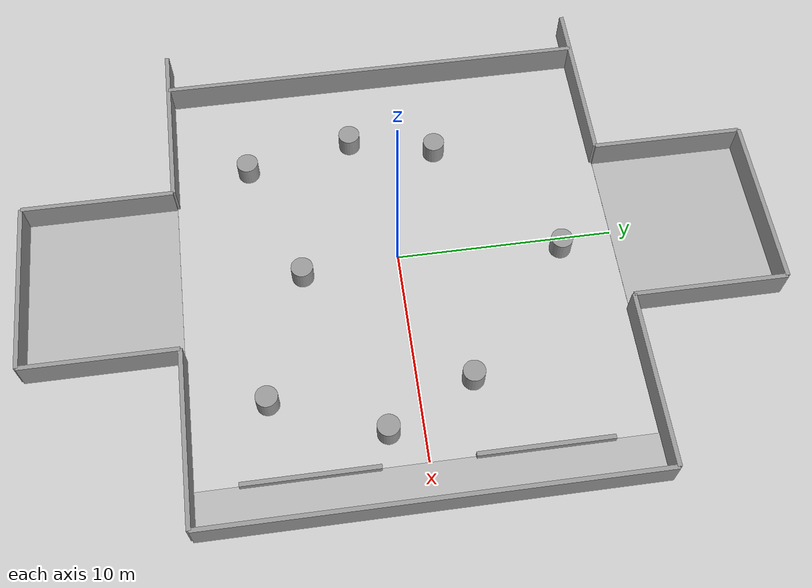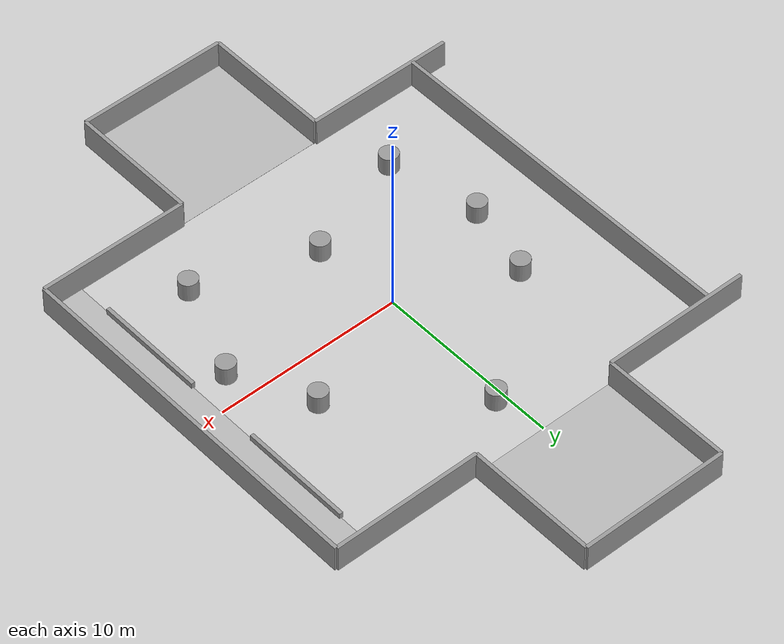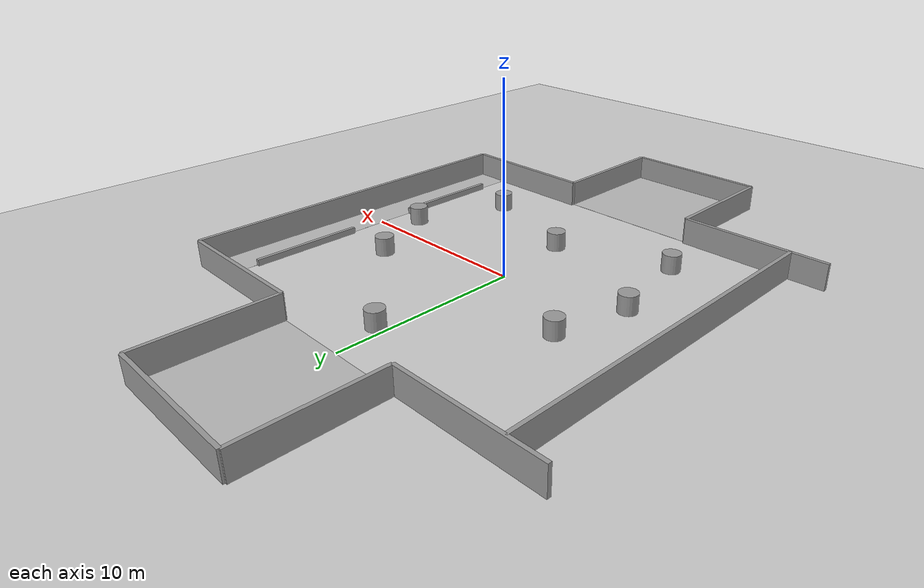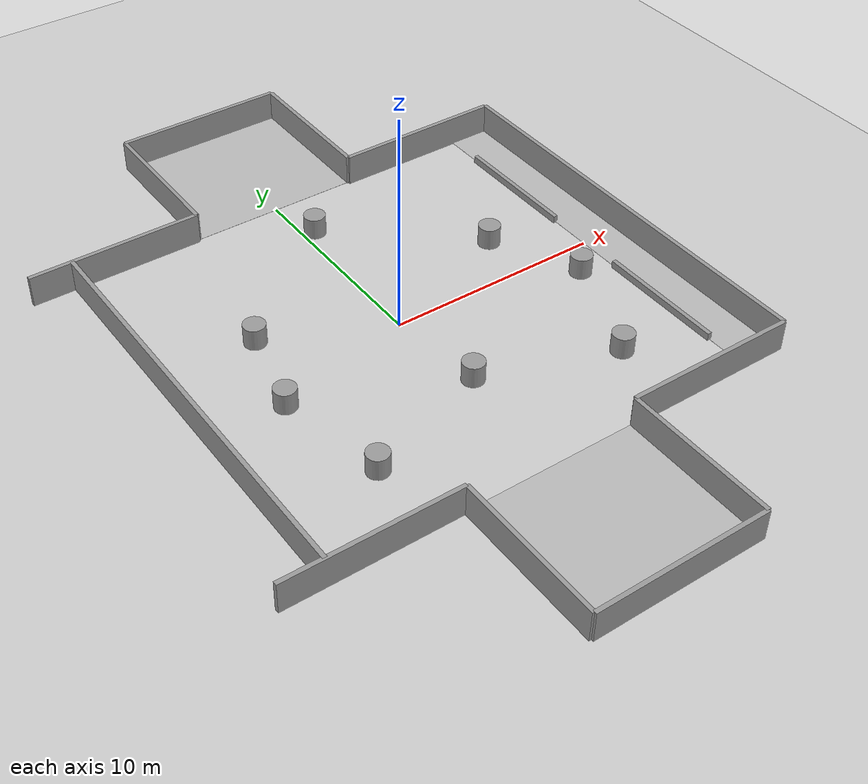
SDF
<sdf version="1.6">
 <world name="default">
  <model name="ground_plane">
   <static>1</static>
   <link name="link">
    <collision name="collision">
     <geometry><plane><normal>0 0 1</normal><size>100 100</size></plane></geometry>
     <surface><friction><ode><mu>100</mu><mu2>50</mu2></ode></friction></surface>
    </collision>
    <visual name="visual">
     <cast_shadows>0</cast_shadows>
     <geometry><plane><normal>0 0 1</normal><size>100 100</size></plane></geometry>
     <material>
      <script><uri>file://media/materials/scripts/gazebo.material</uri><name>Gazebo/Grey</name></script>
     </material>
    </visual>
   </link>
  </model>
  <light name="sun" type="directional">
   <pose>0 0 10 0 -0 0</pose>
   <diffuse>0.8 0.8 0.8 1</diffuse>
   <specular>0.2 0.2 0.2 1</specular>
   <attenuation>
    <range>1000</range>
    <constant>0.9</constant>
    <linear>0.01</linear>
    <quadratic>0.001</quadratic>
   </attenuation>
   <direction>-0.5 0.1 -0.9</direction>
  </light>
  <scene><shadows>0</shadows><ambient>0.4 0.4 0.4 1</ambient><background>0.7 0.7 0.7 1</background></scene>
  <model name="warehouse_walls">
   <static>1</static>
   <link name="wall1_link">
    <pose>-10 0 0 0 -0 1.57</pose>
    <collision name="collision"><geometry><box><size>20 0.2 2.8</size></box></geometry></collision>
    <visual name="wall1_visual">
     <cast_shadows>0</cast_shadows>
     <geometry><box><size>20 0.2 2.8</size></box></geometry>
     <material>
      <script>
       <uri>model://grey_wall/materials/scripts</uri>
       <uri>model://grey_wall/materials/textures</uri>
       <name>vrc/grey_wall</name>
      </script>
     </material>
    </visual>
   </link>
   <link name="wall2_link2">
    <pose>8 -10 0 0 -0 0</pose>
    <collision name="wall2_collision2"><geometry><box><size>8 0.2 2.8</size></box></geometry></collision>
    <visual name="wall2_visual2">
     <cast_shadows>0</cast_shadows>
     <geometry><box><size>8 0.2 2.8</size></box></geometry>
     <material>
      <script>
       <uri>model://grey_wall/materials/scripts</uri>
       <uri>model://grey_wall/materials/textures</uri>
       <name>vrc/grey_wall</name>
      </script>
     </material>
    </visual>
   </link>
   <link name="wall2_link3">
    <pose>4 -13.5 0 0 -0 1.57</pose>
    <collision name="wall2_collision3"><geometry><box><size>7 0.2 2.8</size></box></geometry></collision>
    <visual name="wall2_visual3">
     <cast_shadows>0</cast_shadows>
     <geometry><box><size>7 0.2 2.8</size></box></geometry>
     <material>
      <script>
       <uri>model://grey_wall/materials/scripts</uri>
       <uri>model://grey_wall/materials/textures</uri>
       <name>vrc/grey_wall</name>
      </script>
     </material>
    </visual>
   </link>
   <link name="wall2_link4">
    <pose>0 -17 0 0 -0 0</pose>
    <collision name="wall2_collision4"><geometry><box><size>8 0.2 2.8</size></box></geometry></collision>
    <visual name="wall2_visual4">
     <cast_shadows>0</cast_shadows>
     <geometry><box><size>8 0.2 2.8</size></box></geometry>
     <material>
      <script>
       <uri>model://grey_wall/materials/scripts</uri>
       <uri>model://grey_wall/materials/textures</uri>
       <name>vrc/grey_wall</name>
      </script>
     </material>
    </visual>
   </link>
   <link name="wall2_link5">
    <pose>-4 -13.5 0 0 -0 1.57</pose>
    <collision name="wall2_collision5"><geometry><box><size>7 0.2 2.8</size></box></geometry></collision>
    <visual name="wall2_visual5">
     <cast_shadows>0</cast_shadows>
     <geometry><box><size>7 0.2 2.8</size></box></geometry>
     <material>
      <script>
       <uri>model://grey_wall/materials/scripts</uri>
       <uri>model://grey_wall/materials/textures</uri>
       <name>vrc/grey_wall</name>
      </script>
     </material>
    </visual>
   </link>
   <link name="wall2_link6">
    <pose>-8 -10 0 0 -0 0</pose>
    <collision name="wall2_collision6"><geometry><box><size>8 0.2 2.8</size></box></geometry></collision>
    <visual name="wall2_visual6">
     <cast_shadows>0</cast_shadows>
     <geometry><box><size>8 0.2 2.8</size></box></geometry>
     <material>
      <script>
       <uri>model://grey_wall/materials/scripts</uri>
       <uri>model://grey_wall/materials/textures</uri>
       <name>vrc/grey_wall</name>
      </script>
     </material>
    </visual>
   </link>
   <link name="output_area">
    <pose>0 13.5 0 0 -0 0</pose>
    <visual name="visual_output_area">
     <cast_shadows>0</cast_shadows>
     <geometry><plane><normal>0 0 1</normal><size>8 7</size></plane></geometry>
    </visual>
   </link>
   <link name="wall3_link2">
    <pose>8 10 0 0 -0 0</pose>
    <collision name="wall3_collision2"><geometry><box><size>8 0.2 2.8</size></box></geometry></collision>
    <visual name="wall3_visual2">
     <cast_shadows>0</cast_shadows>
     <geometry><box><size>8 0.2 2.8</size></box></geometry>
     <material>
      <script>
       <uri>model://grey_wall/materials/scripts</uri>
       <uri>model://grey_wall/materials/textures</uri>
       <name>vrc/grey_wall</name>
      </script>
     </material>
    </visual>
   </link>
   <link name="wall3_link3">
    <pose>4 13.5 0 0 -0 1.57</pose>
    <collision name="wall3_collision3"><geometry><box><size>7 0.2 2.8</size></box></geometry></collision>
    <visual name="wall3_visual3">
     <cast_shadows>0</cast_shadows>
     <geometry><box><size>7 0.2 2.8</size></box></geometry>
     <material>
      <script>
       <uri>model://grey_wall/materials/scripts</uri>
       <uri>model://grey_wall/materials/textures</uri>
       <name>vrc/grey_wall</name>
      </script>
     </material>
    </visual>
   </link>
   <link name="wall3_link4">
    <pose>0 17 0 0 -0 0</pose>
    <collision name="wall3_collision4"><geometry><box><size>8 0.2 2.8</size></box></geometry></collision>
    <visual name="wall3_visual4">
     <cast_shadows>0</cast_shadows>
     <geometry><box><size>8 0.2 2.8</size></box></geometry>
     <material>
      <script>
       <uri>model://grey_wall/materials/scripts</uri>
       <uri>model://grey_wall/materials/textures</uri>
       <name>vrc/grey_wall</name>
      </script>
     </material>
    </visual>
   </link>
   <link name="wall3_link5">
    <pose>-4 13.5 0 0 -0 1.57</pose>
    <collision name="wall3_collision5"><geometry><box><size>7 0.2 2.8</size></box></geometry></collision>
    <visual name="wall3_visual5">
     <cast_shadows>0</cast_shadows>
     <geometry><box><size>7 0.2 2.8</size></box></geometry>
     <material>
      <script>
       <uri>model://grey_wall/materials/scripts</uri>
       <uri>model://grey_wall/materials/textures</uri>
       <name>vrc/grey_wall</name>
      </script>
     </material>
    </visual>
   </link>
   <link name="wall3_link6">
    <pose>-8 10 0 0 -0 0</pose>
    <collision name="wall3_collision6"><geometry><box><size>8 0.2 2.8</size></box></geometry></collision>
    <visual name="wall3_visual6">
     <cast_shadows>0</cast_shadows>
     <geometry><box><size>8 0.2 2.8</size></box></geometry>
     <material>
      <script>
       <uri>model://grey_wall/materials/scripts</uri>
       <uri>model://grey_wall/materials/textures</uri>
       <name>vrc/grey_wall</name>
      </script>
     </material>
    </visual>
   </link>
   <link name="output_area">
    <pose>0 -13.5 0 0 -0 0</pose>
    <visual name="visual_output_area">
     <cast_shadows>0</cast_shadows>
     <geometry><plane><normal>0 0 1</normal><size>8 7</size></plane></geometry>
    </visual>
   </link>
   <link name="wall4_link">
    <pose>12 0 0 0 -0 1.57</pose>
    <collision name="wall4_collision"><geometry><box><size>20 0.2 2.8</size></box></geometry></collision>
    <visual name="wall4_visual">
     <cast_shadows>0</cast_shadows>
     <geometry><box><size>20 0.2 2.8</size></box></geometry>
     <material>
      <script>
       <uri>model://grey_wall/materials/scripts</uri>
       <uri>model://grey_wall/materials/textures</uri>
       <name>vrc/grey_wall</name>
      </script>
     </material>
    </visual>
   </link>
   <link name="wall5_link1">
    <pose>10 -5 0 0 -0 1.57</pose>
    <collision name="wall5_collision1"><geometry><box><size>6 0.2 0.6</size></box></geometry></collision>
    <visual name="wall5_visual1">
     <cast_shadows>0</cast_shadows>
     <geometry><box><size>6 0.2 0.6</size></box></geometry>
     <material>
      <script>
       <uri>model://grey_wall/materials/scripts</uri>
       <uri>model://grey_wall/materials/textures</uri>
       <name>vrc/grey_wall</name>
      </script>
     </material>
    </visual>
   </link>
   <link name="wall5_link2">
    <pose>10 5 0 0 -0 1.57</pose>
    <collision name="wall5_collision2"><geometry><box><size>6 0.2 0.6</size></box></geometry></collision>
    <visual name="wall5_visual2">
     <cast_shadows>0</cast_shadows>
     <geometry><box><size>6 0.2 0.6</size></box></geometry>
     <material>
      <script>
       <uri>model://grey_wall/materials/scripts</uri>
       <uri>model://grey_wall/materials/textures</uri>
       <name>vrc/grey_wall</name>
      </script>
     </material>
    </visual>
   </link>
   <link name="resting_area">
    <pose>11 0 0 0 -0 1.57</pose>
    <visual name="visual_resting_area">
     <cast_shadows>0</cast_shadows>
     <geometry><plane><normal>0 0 1</normal><size>20 2</size></plane></geometry>
    </visual>
   </link>
  </model>
  <gravity>0 0 -9.8</gravity>
  <magnetic_field>6e-06 2.3e-05 -4.2e-05</magnetic_field>
  <atmosphere type="adiabatic"/>
  <physics name="default_physics" default="0" type="ode">
   <max_step_size>0.001</max_step_size>
   <real_time_factor>1</real_time_factor>
   <real_time_update_rate>1000</real_time_update_rate>
  </physics>
  <audio><device>default</device></audio>
  <spherical_coordinates>
   <surface_model>EARTH_WGS84</surface_model>
   <latitude_deg>0</latitude_deg>
   <longitude_deg>0</longitude_deg>
   <elevation>0</elevation>
   <heading_deg>0</heading_deg>
  </spherical_coordinates>
  <model name="unit_cylinder">
   <pose>6.52536 -6.51921 0.499998 3e-06 -4e-06 0</pose>
   <link name="link">
    <inertial>
     <mass>1</mass>
     <inertia><ixx>0.145833</ixx><ixy>0</ixy><ixz>0</ixz><iyy>0.145833</iyy><iyz>0</iyz><izz>0.125</izz></inertia>
    </inertial>
    <collision name="collision">
     <geometry><cylinder><radius>0.5</radius><length>1</length></cylinder></geometry>
    </collision>
    <visual name="visual">
     <geometry><cylinder><radius>0.5</radius><length>1</length></cylinder></geometry>
     <material>
      <script><name>Gazebo/Grey</name><uri>file://media/materials/scripts/gazebo.material</uri></script>
     </material>
    </visual>
   </link>
  </model>
  <model name="unit_cylinder_0">
   <pose>-5.47958 -6.49914 0.499992 -3e-06 4e-06 0</pose>
   <link name="link">
    <inertial>
     <mass>1</mass>
     <inertia><ixx>0.145833</ixx><ixy>0</ixy><ixz>0</ixz><iyy>0.145833</iyy><iyz>0</iyz><izz>0.125</izz></inertia>
    </inertial>
    <collision name="collision">
     <geometry><cylinder><radius>0.5</radius><length>1</length></cylinder></geometry>
    </collision>
    <visual name="visual">
     <geometry><cylinder><radius>0.5</radius><length>1</length></cylinder></geometry>
     <material>
      <script><name>Gazebo/Grey</name><uri>file://media/materials/scripts/gazebo.material</uri></script>
     </material>
    </visual>
   </link>
  </model>
  <model name="unit_cylinder_1">
   <pose>6.52856 2.44127 0.499998 3e-06 -4e-06 0</pose>
   <link name="link">
    <inertial>
     <mass>1</mass>
     <inertia><ixx>0.145833</ixx><ixy>0</ixy><ixz>0</ixz><iyy>0.145833</iyy><iyz>0</iyz><izz>0.125</izz></inertia>
    </inertial>
    <collision name="collision">
     <geometry><cylinder><radius>0.5</radius><length>1</length></cylinder></geometry>
    </collision>
    <visual name="visual">
     <geometry><cylinder><radius>0.5</radius><length>1</length></cylinder></geometry>
     <material>
      <script><name>Gazebo/Grey</name><uri>file://media/materials/scripts/gazebo.material</uri></script>
     </material>
    </visual>
   </link>
  </model>
  <model name="unit_cylinder_2">
   <pose>-5.51302 2.46381 0.499992 -3e-06 -4e-06 -0</pose>
   <link name="link">
    <inertial>
     <mass>1</mass>
     <inertia><ixx>0.145833</ixx><ixy>0</ixy><ixz>0</ixz><iyy>0.145833</iyy><iyz>0</iyz><izz>0.125</izz></inertia>
    </inertial>
    <collision name="collision">
     <geometry><cylinder><radius>0.5</radius><length>1</length></cylinder></geometry>
    </collision>
    <visual name="visual">
     <geometry><cylinder><radius>0.5</radius><length>1</length></cylinder></geometry>
     <material>
      <script><name>Gazebo/Grey</name><uri>file://media/materials/scripts/gazebo.material</uri></script>
     </material>
    </visual>
   </link>
  </model>
  <model name="unit_cylinder_3">
   <pose>0.486087 -4.44869 0.499993 -3e-06 -3e-06 0</pose>
   <link name="link">
    <inertial>
     <mass>1</mass>
     <inertia><ixx>0.145833</ixx><ixy>0</ixy><ixz>0</ixz><iyy>0.145833</iyy><iyz>0</iyz><izz>0.125</izz></inertia>
    </inertial>
    <collision name="collision">
     <geometry><cylinder><radius>0.5</radius><length>1</length></cylinder></geometry>
    </collision>
    <visual name="visual">
     <geometry><cylinder><radius>0.5</radius><length>1</length></cylinder></geometry>
     <material>
      <script><name>Gazebo/Grey</name><uri>file://media/materials/scripts/gazebo.material</uri></script>
     </material>
    </visual>
   </link>
  </model>
  <model name="unit_cylinder_4">
   <pose>0.558319 7.50637 0.499997 3e-06 4e-06 -0</pose>
   <link name="link">
    <inertial>
     <mass>1</mass>
     <inertia><ixx>0.145833</ixx><ixy>0</ixy><ixz>0</ixz><iyy>0.145833</iyy><iyz>0</iyz><izz>0.125</izz></inertia>
    </inertial>
    <collision name="collision">
     <geometry><cylinder><radius>0.5</radius><length>1</length></cylinder></geometry>
    </collision>
    <visual name="visual">
     <geometry><cylinder><radius>0.5</radius><length>1</length></cylinder></geometry>
     <material>
      <script><name>Gazebo/Grey</name><uri>file://media/materials/scripts/gazebo.material</uri></script>
     </material>
    </visual>
   </link>
  </model>
  <model name="unit_cylinder_5">
   <pose>-6.47609 -1.52635 0.499993 -3e-06 -4e-06 -0</pose>
   <link name="link">
    <inertial>
     <mass>1</mass>
     <inertia><ixx>0.145833</ixx><ixy>0</ixy><ixz>0</ixz><iyy>0.145833</iyy><iyz>0</iyz><izz>0.125</izz></inertia>
    </inertial>
    <collision name="collision">
     <geometry><cylinder><radius>0.5</radius><length>1</length></cylinder></geometry>
    </collision>
    <visual name="visual">
     <geometry><cylinder><radius>0.5</radius><length>1</length></cylinder></geometry>
     <material>
      <script><name>Gazebo/Grey</name><uri>file://media/materials/scripts/gazebo.material</uri></script>
     </material>
    </visual>
   </link>
  </model>
  <model name="unit_cylinder_6">
   <pose>8.50032 -1.53672 0.499997 3e-06 4e-06 -0</pose>
   <link name="link">
    <inertial>
     <mass>1</mass>
     <inertia><ixx>0.145833</ixx><ixy>0</ixy><ixz>0</ixz><iyy>0.145833</iyy><iyz>0</iyz><izz>0.125</izz></inertia>
    </inertial>
    <collision name="collision">
     <geometry><cylinder><radius>0.5</radius><length>1</length></cylinder></geometry>
    </collision>
    <visual name="visual">
     <geometry><cylinder><radius>0.5</radius><length>1</length></cylinder></geometry>
     <material>
      <script><name>Gazebo/Grey</name><uri>file://media/materials/scripts/gazebo.material</uri></script>
     </material>
    </visual>
   </link>
  </model>
 </world>
</sdf>
